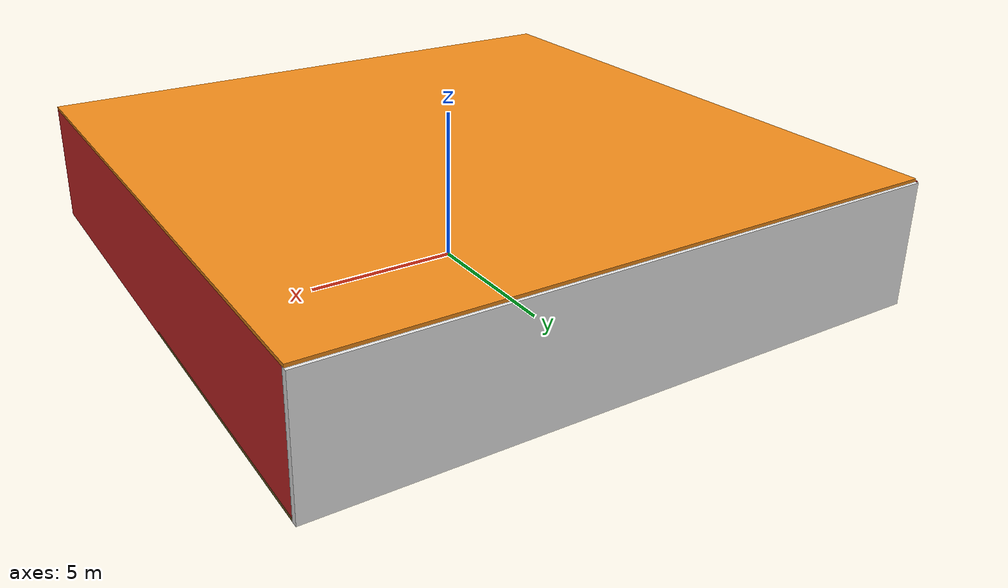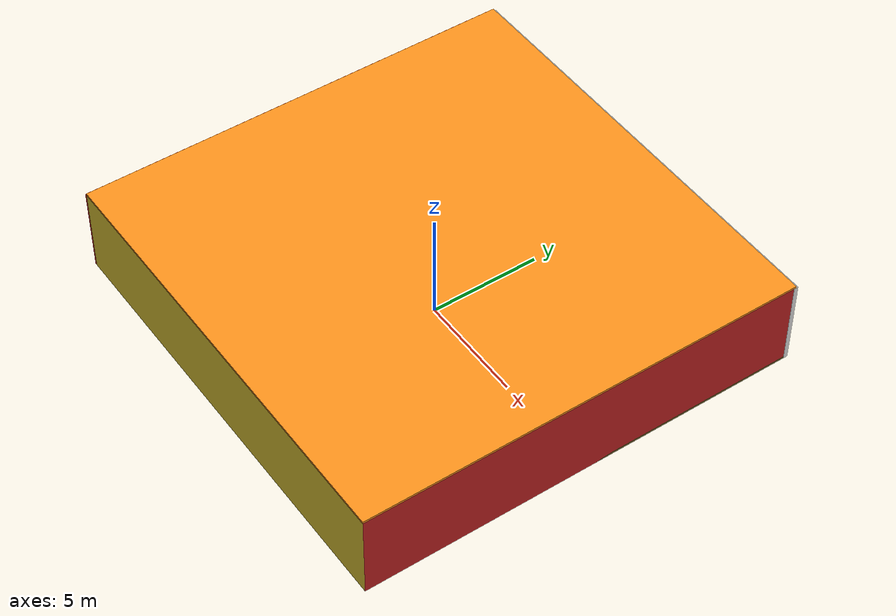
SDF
<sdf version="1.4">
 <world name="default">
  <physics type="ode">
   <max_step_size>0.001</max_step_size>
   <real_time_factor>1</real_time_factor>
   <real_time_update_rate>1000</real_time_update_rate>
   <gravity>0 0 -9.8</gravity>
  </physics>
  <scene><ambient>0.4 0.4 0.4 1</ambient><background>0.7 0.7 0.7 1</background><shadows>1</shadows></scene>
  <model name="Surrounding">
   <static>1</static>
   <link name="Ceiling">
    <collision name="Ceiling_Collision"><geometry><box><size>20 20 0.1</size></box></geometry></collision>
    <visual name="Ceiling_Visual">
     <geometry><box><size>20 20 0.1</size></box></geometry>
     <material>
      <script><uri>file://media/materials/scripts/gazebo.material</uri><name>Gazebo/Orange</name></script>
     </material>
    </visual>
    <pose>0 0 4.05 0 0 0</pose>
   </link>
   <link name="Wall_South">
    <collision name="Wall_South_Collision">
     <geometry><box><size>20 0 4</size></box></geometry>
     <pose>0 0 2 0 -0 0</pose>
    </collision>
    <visual name="Wall_South_Visual">
     <pose>0 0 2 0 -0 0</pose>
     <geometry><box><size>20 0 4</size></box></geometry>
     <material>
      <script><uri>file://media/materials/scripts/gazebo.material</uri><name>Gazebo/ZincYellow</name></script>
     </material>
    </visual>
    <velocity_decay><linear>0</linear><angular>0</angular></velocity_decay>
    <pose>0 -10 0 0 -0 0</pose>
   </link>
   <link name="Wall_East">
    <collision name="Wall_21_Collision">
     <geometry><box><size>20 0 4</size></box></geometry>
     <pose>0 0 2 0 -0 0</pose>
    </collision>
    <visual name="Wall_21_Visual">
     <pose>0 0 2 0 -0 0</pose>
     <geometry><box><size>20 0 4</size></box></geometry>
     <material>
      <script><uri>file://media/materials/scripts/gazebo.material</uri><name>Gazebo/RedBright</name></script>
     </material>
    </visual>
    <velocity_decay><linear>0</linear><angular>0</angular></velocity_decay>
    <pose>10 0 0 0 -0 1.5708</pose>
   </link>
   <link name="Wall_North">
    <collision name="Wall_22_Collision">
     <geometry><box><size>20 0.2 4</size></box></geometry>
     <pose>0 0 2 0 -0 0</pose>
    </collision>
    <visual name="Wall_22_Visual">
     <pose>0 0 2 0 -0 0</pose>
     <geometry><box><size>20 0.2 4</size></box></geometry>
     <material>
      <script><uri>file://media/materials/scripts/gazebo.material</uri><name>Gazebo/White</name></script>
     </material>
    </visual>
    <velocity_decay><linear>0</linear><angular>0</angular></velocity_decay>
    <pose>0 10 0 0 -0 0</pose>
   </link>
   <link name="Wall_West">
    <collision name="Wall_23_Collision">
     <geometry><box><size>20 0.2 4</size></box></geometry>
     <pose>0 0 2 0 -0 0</pose>
    </collision>
    <visual name="Wall_23_Visual">
     <pose>0 0 2 0 -0 0</pose>
     <geometry><box><size>20 0.2 4</size></box></geometry>
     <material>
      <script><uri>file://media/materials/scripts/gazebo.material</uri><name>Gazebo/RedBright</name></script>
     </material>
    </visual>
    <velocity_decay><linear>0</linear><angular>0</angular></velocity_decay>
    <pose>-10 0 0 0 0 -1.5708</pose>
   </link>
   <link name="Ground_link">
    <collision name="collision">
     <pose>0 0 .05 0 -0 0</pose>
     <geometry><box><size>20 20 0.1</size></box></geometry>
    </collision>
    <visual name="visual">
     <pose>0 0 .05 0 -0 0</pose>
     <geometry><box><size>20 20 0.1</size></box></geometry>
     <material>
      <script><uri>file://media/materials/scripts/gazebo.material</uri><name>Gazebo/GreenTransparent</name></script>
     </material>
    </visual>
   </link>
   <static>1</static>
  </model>
  <spherical_coordinates>
   <surface_model>EARTH_WGS84</surface_model>
   <latitude_deg>0</latitude_deg>
   <longitude_deg>0</longitude_deg>
   <elevation>0</elevation>
   <heading_deg>0</heading_deg>
  </spherical_coordinates>
  <light name="lightball_0" type="diffuse">
   <diffuse>0.8 0.8 0.8 1</diffuse>
   <specular>0.2 0.2 0.2 1</specular>
   <attenuation>
    <range>100</range>
    <constant>0.7</constant>
    <linear>0.01</linear>
    <quadratic>0.001</quadratic>
   </attenuation>
   <direction>-0.5 0.1 -0.9</direction>
   <pose>-5.77861102499 5.74601585396 1.3144222009 0 0 0</pose>
  </light>
  <light name="lightball_1" type="diffuse">
   <diffuse>0.8 0.8 0.8 1</diffuse>
   <specular>0.2 0.2 0.2 1</specular>
   <attenuation>
    <range>100</range>
    <constant>0.7</constant>
    <linear>0.01</linear>
    <quadratic>0.001</quadratic>
   </attenuation>
   <direction>-0.5 0.1 -0.9</direction>
   <pose>8.47093313013 3.52865537402 0.904510830364 0 0 0</pose>
  </light>
  <light name="lightball_2" type="diffuse">
   <diffuse>0.8 0.8 0.8 1</diffuse>
   <specular>0.2 0.2 0.2 1</specular>
   <attenuation>
    <range>100</range>
    <constant>0.7</constant>
    <linear>0.01</linear>
    <quadratic>0.001</quadratic>
   </attenuation>
   <direction>-0.5 0.1 -0.9</direction>
   <pose>-2.11546289311 5.22044735482 0.587722470476 0 0 0</pose>
  </light>
  <light name="lightball_3" type="diffuse">
   <diffuse>0.8 0.8 0.8 1</diffuse>
   <specular>0.2 0.2 0.2 1</specular>
   <attenuation>
    <range>100</range>
    <constant>0.7</constant>
    <linear>0.01</linear>
    <quadratic>0.001</quadratic>
   </attenuation>
   <direction>-0.5 0.1 -0.9</direction>
   <pose>2.89007677851 -6.15273187592 1.97630527904 0 0 0</pose>
  </light>
  <light name="lightball_4" type="diffuse">
   <diffuse>0.8 0.8 0.8 1</diffuse>
   <specular>0.2 0.2 0.2 1</specular>
   <attenuation>
    <range>100</range>
    <constant>0.7</constant>
    <linear>0.01</linear>
    <quadratic>0.001</quadratic>
   </attenuation>
   <direction>-0.5 0.1 -0.9</direction>
   <pose>-8.69652398635 7.35732586589 2.08889673076 0 0 0</pose>
  </light>
  <light name="lightball_5" type="diffuse">
   <diffuse>0.8 0.8 0.8 1</diffuse>
   <specular>0.2 0.2 0.2 1</specular>
   <attenuation>
    <range>100</range>
    <constant>0.7</constant>
    <linear>0.01</linear>
    <quadratic>0.001</quadratic>
   </attenuation>
   <direction>-0.5 0.1 -0.9</direction>
   <pose>4.38917976911 -9.54595265276 1.41396075144 0 0 0</pose>
  </light>
  <light name="lightball_6" type="diffuse">
   <diffuse>0.8 0.8 0.8 1</diffuse>
   <specular>0.2 0.2 0.2 1</specular>
   <attenuation>
    <range>100</range>
    <constant>0.7</constant>
    <linear>0.01</linear>
    <quadratic>0.001</quadratic>
   </attenuation>
   <direction>-0.5 0.1 -0.9</direction>
   <pose>5.26869141757 9.53178457603 3.38283966262 0 0 0</pose>
  </light>
  <light name="lightball_7" type="diffuse">
   <diffuse>0.8 0.8 0.8 1</diffuse>
   <specular>0.2 0.2 0.2 1</specular>
   <attenuation>
    <range>100</range>
    <constant>0.7</constant>
    <linear>0.01</linear>
    <quadratic>0.001</quadratic>
   </attenuation>
   <direction>-0.5 0.1 -0.9</direction>
   <pose>1.80709844586 0.23739652024 3.47987157853 0 0 0</pose>
  </light>
  <light name="lightball_8" type="diffuse">
   <diffuse>0.8 0.8 0.8 1</diffuse>
   <specular>0.2 0.2 0.2 1</specular>
   <attenuation>
    <range>100</range>
    <constant>0.7</constant>
    <linear>0.01</linear>
    <quadratic>0.001</quadratic>
   </attenuation>
   <direction>-0.5 0.1 -0.9</direction>
   <pose>-8.81372443146 -1.04215794689 2.79869705593 0 0 0</pose>
  </light>
  <light name="lightball_9" type="diffuse">
   <diffuse>0.8 0.8 0.8 1</diffuse>
   <specular>0.2 0.2 0.2 1</specular>
   <attenuation>
    <range>100</range>
    <constant>0.7</constant>
    <linear>0.01</linear>
    <quadratic>0.001</quadratic>
   </attenuation>
   <direction>-0.5 0.1 -0.9</direction>
   <pose>-6.05048561509 -6.00056420919 1.61647569637 0 0 0</pose>
  </light>
  <include>
   <uri>model://robocup_3Dsim_goal</uri>
   <pose>4.01220282026 6.91124402269 0 0 0 1.53748667569</pose>
  </include>
 </world>
</sdf>

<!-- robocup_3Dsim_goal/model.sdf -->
<sdf version="1.5">
  <model name="robocup_3d_goal">
    <static>true</static>
    <link name="left_post">
      <pose>0 1.05 0.45 0 0 0</pose>
      <collision name="collision">
        <geometry>
          <cylinder>
            <radius>0.05</radius>
            <length>0.9</length>
          </cylinder>
        </geometry>
      </collision>
      <visual name="visual">
        <geometry>
          <cylinder>
            <radius>0.05</radius>
            <length>0.9</length>
          </cylinder>
        </geometry>
        <material>
          <script>
            <uri>file://media/materials/scripts/gazebo.material</uri>
            <name>Gazebo/ZincYellow</name>
          </script>
        </material>
      </visual>
    </link>
    <link name="left_support_horiz_lower">
      <pose>0.30 1.05 0.01 0 0 0</pose>
      <collision name="collision">
        <geometry>
          <box>
            <size>0.50 0.02 0.02</size>
          </box>
        </geometry>
      </collision>
      <visual name="visual">
        <geometry>
          <box>
            <size>0.50 0.02 0.02</size>
          </box>
        </geometry>
        <material>
          <script>
            <uri>file://media/materials/scripts/gazebo.material</uri>
            <name>Gazebo/White</name>
          </script>
        </material>
      </visual>
    </link>
    <link name="left_support_horiz_upper">
      <pose>0.30 1.05 0.79 0 0 0</pose>
      <collision name="collision">
        <geometry>
          <box>
            <size>0.50 0.02 0.02</size>
          </box>
        </geometry>
      </collision>
      <visual name="visual">
        <geometry>
          <box>
            <size>0.50 0.02 0.02</size>
          </box>
        </geometry>
        <material>
          <script>
            <uri>file://media/materials/scripts/gazebo.material</uri>
            <name>Gazebo/White</name>
          </script>
        </material>
      </visual>
    </link>
    <link name="left_support_vertical">
      <pose>0.56 1.05 0.4 0 1.5708 0</pose>
      <collision name="collision">
        <geometry>
          <box>
            <size>0.80 0.02 0.02</size>
          </box>
        </geometry>
      </collision>
      <visual name="visual">
        <geometry>
          <box>
            <size>0.80 0.02 0.02</size>
          </box>
        </geometry>
        <material>
          <script>
            <uri>file://media/materials/scripts/gazebo.material</uri>
            <name>Gazebo/White</name>
          </script>
        </material>
      </visual>
    </link>
    <link name="right_support_horiz_lower">
      <pose>0.30 -1.05 0.01 0 0 0</pose>
      <collision name="collision">
        <geometry>
          <box>
            <size>0.50 0.02 0.02</size>
          </box>
        </geometry>
      </collision>
      <visual name="visual">
        <geometry>
          <box>
            <size>0.50 0.02 0.02</size>
          </box>
        </geometry>
        <material>
          <script>
            <uri>file://media/materials/scripts/gazebo.material</uri>
            <name>Gazebo/White</name>
          </script>
        </material>
      </visual>
    </link>
    <link name="right_support_horiz_upper">
      <pose>0.30 -1.05 0.79 0 0 0</pose>
      <collision name="collision">
        <geometry>
          <box>
            <size>0.50 0.02 0.02</size>
          </box>
        </geometry>
      </collision>
      <visual name="visual">
        <geometry>
          <box>
            <size>0.50 0.02 0.02</size>
          </box>
        </geometry>
        <material>
          <script>
            <uri>file://media/materials/scripts/gazebo.material</uri>
            <name>Gazebo/White</name>
          </script>
        </material>
      </visual>
    </link>
    <link name="right_support_vertical">
      <pose>0.56 -1.05 0.4 0 1.5708 0</pose>
      <collision name="collision">
        <geometry>
          <box>
            <size>0.80 0.02 0.02</size>
          </box>
        </geometry>
      </collision>
      <visual name="visual">
        <geometry>
          <box>
            <size>0.80 0.02 0.02</size>
          </box>
        </geometry>
        <material>
          <script>
            <uri>file://media/materials/scripts/gazebo.material</uri>
            <name>Gazebo/White</name>
          </script>
        </material>
      </visual>
    </link>
    <link name="center_support_horiz_lower">
      <pose>0.56 0 0.01 0 1.5708 0</pose>
      <collision name="collision">
        <geometry>
          <box>
            <size>0.02 2.08 0.02</size>
          </box>
        </geometry>
      </collision>
      <visual name="visual">
        <geometry>
          <box>
            <size>0.02 2.08 0.02</size>
          </box>
        </geometry>
        <material>
          <script>
            <uri>file://media/materials/scripts/gazebo.material</uri>
            <name>Gazebo/White</name>
          </script>
        </material>
      </visual>
    </link>
    <link name="center_support_horiz_upper">
      <pose>0.56 0 0.79 0 1.5708 0</pose>
      <collision name="collision">
        <geometry>
          <box>
            <size>0.02 2.08 0.02</size>
          </box>
        </geometry>
      </collision>
      <visual name="visual">
        <geometry>
          <box>
            <size>0.02 2.08 0.02</size>
          </box>
        </geometry>
        <material>
          <script>
            <uri>file://media/materials/scripts/gazebo.material</uri>
            <name>Gazebo/White</name>
          </script>
        </material>
      </visual>
    </link>
    <link name="right_post">
      <pose>0 -1.05 0.45 0 0 0</pose>
      <collision name="collision">
        <geometry>
          <cylinder>
            <radius>0.05</radius>
            <length>0.9</length>
          </cylinder>
        </geometry>
      </collision>
      <visual name="visual">
        <geometry>
          <cylinder>
            <radius>0.05</radius>
            <length>0.9</length>
          </cylinder>
        </geometry>
        <material>
          <script>
            <uri>file://media/materials/scripts/gazebo.material</uri>
            <name>Gazebo/ZincYellow</name>
          </script>
        </material>
      </visual>
    </link>
    <link name="crossbar">
      <pose>0 0 0.85 1.57 1.57 0</pose>
      <collision name="collision">
        <geometry>
          <cylinder>
            <radius>0.05</radius>
            <length>2.0</length>
          </cylinder>
        </geometry>
      </collision>
      <visual name="visual">
        <geometry>
          <cylinder>
            <radius>0.05</radius>
            <length>2.0</length>
          </cylinder>
        </geometry>
        <material>
          <script>
            <uri>file://media/materials/scripts/gazebo.material</uri>
            <name>Gazebo/ZincYellow</name>
          </script>
        </material>
      </visual>
    </link>
    <link name="center_net">
      <pose>0.56 0 0.40 0 0 0</pose>
      <collision name="collision">
        <geometry>
          <box>
            <size>0.01 2.1 0.80</size>
          </box>
        </geometry>
      </collision>
      <visual name="visual">
        <geometry>
          <box>
            <size>0.01 2.1 0.80</size>
          </box>
        </geometry>
        <material>
          <script>
            <uri>model://../model_source/models/robocup09_spl_field/materials/scripts/</uri>
            <uri>model://../model_source/models/robocup09_spl_field/materials/textures/</uri>
            <name>RoboCup/Net</name>
          </script>
        </material>
      </visual>
    </link>
    <link name="left_net">
      <pose>0.30 1.05 0.40 0 0 0</pose>
      <collision name="collision">
        <geometry>
          <box>
            <size>0.50 0.01 0.76</size>
          </box>
        </geometry>
      </collision>
      <visual name="visual">
        <geometry>
          <box>
            <size>0.50 0.01 0.76</size>
          </box>
        </geometry>
        <material>
          <script>
            <uri>model://../model_source/models/robocup09_spl_field/materials/scripts/</uri>
            <uri>model://../model_source/models/robocup09_spl_field/materials/textures/</uri>
            <name>RoboCup/Net</name>
          </script>
        </material>
      </visual>
    </link>
    <link name="right_net">
      <pose>0.30 -1.05 0.40 0 0 0</pose>
      <collision name="collision">
        <geometry>
          <box>
            <size>0.50 0.01 0.76</size>
          </box>
        </geometry>
      </collision>
      <visual name="visual">
        <geometry>
          <box>
            <size>0.50 0.01 0.76</size>
          </box>
        </geometry>
        <material>
          <script>
            <uri>model://../model_source/models/robocup09_spl_field/materials/scripts/</uri>
            <uri>model://../model_source/models/robocup09_spl_field/materials/textures/</uri>
            <name>RoboCup/Net</name>
          </script>
        </material>
      </visual>
    </link>
  </model>
</sdf>
